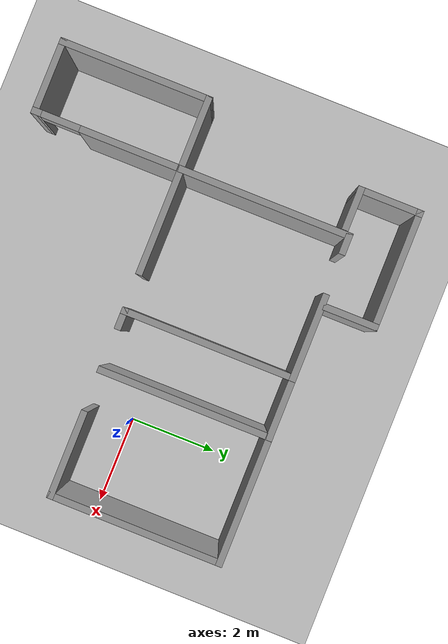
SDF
<sdf version="1.9">
 <world name="default">
  <model name="ground_plane">
   <static>true</static>
   <link name="link">
    <collision name="collision">
     <geometry><plane><normal>0 0 1</normal><size>100 100</size></plane></geometry>
     <surface><friction><ode><mu>100</mu><mu2>50</mu2></ode></friction></surface>
    </collision>
    <visual name="visual">
     <cast_shadows>false</cast_shadows>
     <geometry><plane><normal>0 0 1</normal><size>100 100</size></plane></geometry>
     <material>
      <script><uri>file://media/materials/scripts/gazebo.material</uri><name>Gazebo/Grey</name></script>
     </material>
    </visual>
   </link>
  </model>
  <model name="cma_escritorio">
   <pose>-1.7968200000000001 1.02121 0 0 0 0</pose>
   <link name="Wall_11">
    <collision name="Wall_11_Collision">
     <geometry><box><size>2 0.14999999999999999 2.5</size></box></geometry>
     <pose>0 0 1.25 0 0 0</pose>
    </collision>
    <visual name="Wall_11_Visual">
     <pose>0 0 1.25 0 0 0</pose>
     <geometry><box><size>2 0.14999999999999999 2.5</size></box></geometry>
     <material>
      <script><uri>file://media/materials/scripts/gazebo.material</uri><name>Gazebo/Grey</name></script>
      <ambient>1 1 1 1</ambient>
     </material>
    </visual>
    <pose>-1.3999999999999999 1.9299999999999999 0 0 0 3.1415899999999999</pose>
   </link>
   <link name="Wall_2">
    <collision name="Wall_2_Collision">
     <geometry><box><size>4 0.14999999999999999 2.5</size></box></geometry>
     <pose>0 0 1.25 0 0 0</pose>
    </collision>
    <visual name="Wall_2_Visual">
     <pose>0 0 1.25 0 0 0</pose>
     <geometry><box><size>4 0.14999999999999999 2.5</size></box></geometry>
     <material>
      <script><uri>file://media/materials/scripts/gazebo.material</uri><name>Gazebo/Grey</name></script>
      <ambient>1 1 1 1</ambient>
     </material>
    </visual>
    <pose>0.875 0.0050000000000000001 0 0 0 1.5708</pose>
   </link>
   <link name="Wall_25">
    <collision name="Wall_25_Collision">
     <geometry><box><size>2.5 0.14999999999999999 2.5</size></box></geometry>
     <pose>0 0 1.25 0 0 0</pose>
    </collision>
    <visual name="Wall_25_Visual">
     <pose>0 0 1.25 0 0 0</pose>
     <geometry><box><size>2.5 0.14999999999999999 2.5</size></box></geometry>
     <material>
      <script><uri>file://media/materials/scripts/gazebo.material</uri><name>Gazebo/Grey</name></script>
      <ambient>1 1 1 1</ambient>
     </material>
    </visual>
    <pose>-2.5499999999999998 -1.9299999999999999 0 0 0 3.1415899999999999</pose>
   </link>
   <link name="Wall_26">
    <collision name="Wall_26_Collision">
     <geometry><box><size>4 0.14999999999999999 2.5</size></box></geometry>
     <pose>0 0 1.25 0 0 0</pose>
    </collision>
    <visual name="Wall_26_Visual">
     <pose>0 0 1.25 0 0 0</pose>
     <geometry><box><size>4 0.14999999999999999 2.5</size></box></geometry>
     <material>
      <script><uri>file://media/materials/scripts/gazebo.material</uri><name>Gazebo/Grey</name></script>
      <ambient>1 1 1 1</ambient>
     </material>
    </visual>
    <pose>-3.7250000000000001 -0.0050000000000000001 0 0 0 1.5708</pose>
   </link>
   <link name="Wall_27">
    <collision name="Wall_27_Collision">
     <geometry><box><size>0.5 0.14999999999999999 2.5</size></box></geometry>
     <pose>0 0 1.25 0 0 0</pose>
    </collision>
    <visual name="Wall_27_Visual">
     <pose>0 0 1.25 0 0 0</pose>
     <geometry><box><size>0.5 0.14999999999999999 2.5</size></box></geometry>
     <material>
      <script><uri>file://media/materials/scripts/gazebo.material</uri><name>Gazebo/Grey</name></script>
      <ambient>1 1 1 1</ambient>
     </material>
    </visual>
    <pose>-3.5499999999999998 1.9199999999999999 0 0 0 0</pose>
   </link>
   <link name="Wall_3">
    <collision name="Wall_3_Collision">
     <geometry><box><size>3 0.14999999999999999 2.5</size></box></geometry>
     <pose>0 0 1.25 0 0 0</pose>
    </collision>
    <visual name="Wall_3_Visual">
     <pose>0 0 1.25 0 0 0</pose>
     <geometry><box><size>3 0.14999999999999999 2.5</size></box></geometry>
     <material>
      <script><uri>file://media/materials/scripts/gazebo.material</uri><name>Gazebo/Grey</name></script>
      <ambient>1 1 1 1</ambient>
     </material>
    </visual>
    <pose>2.2999999999999998 1.9299999999999999 0 0 0 0</pose>
   </link>
   <link name="Wall_4">
    <collision name="Wall_4_Collision">
     <geometry><box><size>4 0.14999999999999999 2.5</size></box></geometry>
     <pose>0 0 1.25 0 0 0</pose>
    </collision>
    <visual name="Wall_4_Visual">
     <pose>0 0 1.25 0 0 0</pose>
     <geometry><box><size>4 0.14999999999999999 2.5</size></box></geometry>
     <material>
      <script><uri>file://media/materials/scripts/gazebo.material</uri><name>Gazebo/Grey</name></script>
      <ambient>1 1 1 1</ambient>
     </material>
    </visual>
    <pose>3.7250000000000001 0.0050000000000000001 0 0 0 -1.5708</pose>
   </link>
   <link name="Wall_5">
    <collision name="Wall_5_Collision">
     <geometry><box><size>2 0.14999999999999999 2.5</size></box></geometry>
     <pose>0 0 1.25 0 0 0</pose>
    </collision>
    <visual name="Wall_5_Visual">
     <pose>0 0 1.25 0 0 0</pose>
     <geometry><box><size>2 0.14999999999999999 2.5</size></box></geometry>
     <material>
      <script><uri>file://media/materials/scripts/gazebo.material</uri><name>Gazebo/Grey</name></script>
      <ambient>1 1 1 1</ambient>
     </material>
    </visual>
    <pose>2.7999999999999998 -1.9199999999999999 0 0 0 3.1415899999999999</pose>
   </link>
   <link name="Wall_7">
    <collision name="Wall_7_Collision">
     <geometry><box><size>1.5 0.14999999999999999 2.5</size></box></geometry>
     <pose>0 0 1.25 0 0 0</pose>
    </collision>
    <visual name="Wall_7_Visual">
     <pose>0 0 1.25 0 0 0</pose>
     <geometry><box><size>1.5 0.14999999999999999 2.5</size></box></geometry>
     <material>
      <script><uri>file://media/materials/scripts/gazebo.material</uri><name>Gazebo/Grey</name></script>
      <ambient>1 1 1 1</ambient>
     </material>
    </visual>
    <pose>0.20000000000000001 1.9299999999999999 0 0 0 3.1415899999999999</pose>
   </link>
   <link name="Wall_8">
    <collision name="Wall_8_Collision">
     <geometry><box><size>4 0.14999999999999999 2.5</size></box></geometry>
     <pose>0 0 1.25 0 0 0</pose>
    </collision>
    <visual name="Wall_8_Visual">
     <pose>0 0 1.25 0 0 0</pose>
     <geometry><box><size>4 0.14999999999999999 2.5</size></box></geometry>
     <material>
      <script><uri>file://media/materials/scripts/gazebo.material</uri><name>Gazebo/Grey</name></script>
      <ambient>1 1 1 1</ambient>
     </material>
    </visual>
    <pose>-0.47499999999999998 0.0050000000000000001 0 0 0 -1.5708</pose>
   </link>
   <link name="Wall_9">
    <collision name="Wall_9_Collision">
     <geometry><box><size>0.5 0.14999999999999999 2.5</size></box></geometry>
     <pose>0 0 1.25 0 0 0</pose>
    </collision>
    <visual name="Wall_9_Visual">
     <pose>0 0 1.25 0 0 0</pose>
     <geometry><box><size>0.5 0.14999999999999999 2.5</size></box></geometry>
     <material>
      <script><uri>file://media/materials/scripts/gazebo.material</uri><name>Gazebo/Grey</name></script>
      <ambient>1 1 1 1</ambient>
     </material>
    </visual>
    <pose>-0.29999999999999999 -1.9199999999999999 0 0 0 0</pose>
   </link>
   <static>true</static>
  </model>
  <model name="cma_banheiro">
   <pose>-5.2292800000000002 3.4870999999999999 0 0 0 0</pose>
   <link name="Wall_0">
    <collision name="Wall_0_Collision">
     <geometry><box><size>1 0.14999999999999999 2.5</size></box></geometry>
     <pose>0 0 1.25 0 0 0</pose>
    </collision>
    <visual name="Wall_0_Visual">
     <pose>0 0 1.25 0 0 0</pose>
     <geometry><box><size>1 0.14999999999999999 2.5</size></box></geometry>
     <material>
      <script><uri>file://media/materials/scripts/gazebo.material</uri><name>Gazebo/Grey</name></script>
      <ambient>1 1 1 1</ambient>
     </material>
    </visual>
    <pose>-0.875 -0.67500000000000004 0 0 0 3.1415899999999999</pose>
   </link>
   <link name="Wall_1">
    <collision name="Wall_1_Collision">
     <geometry><box><size>1.5 0.14999999999999999 2.5</size></box></geometry>
     <pose>0 0 1.25 0 0 0</pose>
    </collision>
    <visual name="Wall_1_Visual">
     <pose>0 0 1.25 0 0 0</pose>
     <geometry><box><size>1.5 0.14999999999999999 2.5</size></box></geometry>
     <material>
      <script><uri>file://media/materials/scripts/gazebo.material</uri><name>Gazebo/Grey</name></script>
      <ambient>1 1 1 1</ambient>
     </material>
    </visual>
    <pose>-1.3 0 0 0 0 1.5708</pose>
   </link>
   <link name="Wall_2">
    <collision name="Wall_2_Collision">
     <geometry><box><size>2.75 0.14999999999999999 2.5</size></box></geometry>
     <pose>0 0 1.25 0 0 0</pose>
    </collision>
    <visual name="Wall_2_Visual">
     <pose>0 0 1.25 0 0 0</pose>
     <geometry><box><size>2.75 0.14999999999999999 2.5</size></box></geometry>
     <material>
      <script><uri>file://media/materials/scripts/gazebo.material</uri><name>Gazebo/Grey</name></script>
      <ambient>1 1 1 1</ambient>
     </material>
    </visual>
    <pose>0 0.67500000000000004 0 0 0 0</pose>
   </link>
   <link name="Wall_4">
    <collision name="Wall_4_Collision">
     <geometry><box><size>1.25 0.14999999999999999 2.5</size></box></geometry>
     <pose>0 0 1.25 0 0 0</pose>
    </collision>
    <visual name="Wall_4_Visual">
     <pose>0 0 1.25 0 0 0</pose>
     <geometry><box><size>1.25 0.14999999999999999 2.5</size></box></geometry>
     <material>
      <script><uri>file://media/materials/scripts/gazebo.material</uri><name>Gazebo/Grey</name></script>
      <ambient>1 1 1 1</ambient>
     </material>
    </visual>
    <pose>1.3 0.125 0 0 0 -1.5708</pose>
   </link>
   <static>true</static>
  </model>
  <model name="cma_varanda1">
   <pose>-6.3251799999999996 -2.5931299999999999 0 0 0 0</pose>
   <link name="Wall_0">
    <pose>0.80000000000000004 0 0 0 0 -1.5708</pose>
    <visual name="Wall_0_Visual_0">
     <pose>-0.55249999999999999 0 1.25 0 0 0</pose>
     <geometry><box><size>2.395 0.14999999999999999 2.5</size></box></geometry>
     <material>
      <script><uri>file://media/materials/scripts/gazebo.material</uri><name>Gazebo/Grey</name></script>
      <ambient>1 1 1 1</ambient>
     </material>
    </visual>
    <collision name="Wall_0_Collision_0">
     <geometry><box><size>2.395 0.14999999999999999 2.5</size></box></geometry>
     <pose>-0.55249999999999999 0 1.25 0 0 0</pose>
    </collision>
    <visual name="Wall_0_Visual_1">
     <pose>1.6375 0 1.25 0 0 0</pose>
     <geometry><box><size>0.22500000000000001 0.14999999999999999 2.5</size></box></geometry>
     <material>
      <script><uri>file://media/materials/scripts/gazebo.material</uri><name>Gazebo/Grey</name></script>
      <ambient>1 1 1 1</ambient>
     </material>
    </visual>
    <collision name="Wall_0_Collision_1">
     <geometry><box><size>0.22500000000000001 0.14999999999999999 2.5</size></box></geometry>
     <pose>1.6375 0 1.25 0 0 0</pose>
    </collision>
    <visual name="Wall_0_Visual_2">
     <pose>1.085 0 2.25 0 0 0</pose>
     <geometry><box><size>0.88 0.14999999999999999 0.5</size></box></geometry>
     <material>
      <script><uri>file://media/materials/scripts/gazebo.material</uri><name>Gazebo/Grey</name></script>
      <ambient>1 1 1 1</ambient>
     </material>
    </visual>
    <collision name="Wall_0_Collision_2">
     <geometry><box><size>0.88 0.14999999999999999 0.5</size></box></geometry>
     <pose>1.085 0 2.25 0 0 0</pose>
    </collision>
   </link>
   <link name="Wall_1">
    <collision name="Wall_1_Collision">
     <geometry><box><size>1.75 0.14999999999999999 2.5</size></box></geometry>
     <pose>0 0 1.25 0 0 0</pose>
    </collision>
    <visual name="Wall_1_Visual">
     <pose>0 0 1.25 0 0 0</pose>
     <geometry><box><size>1.75 0.14999999999999999 2.5</size></box></geometry>
     <material>
      <script><uri>file://media/materials/scripts/gazebo.material</uri><name>Gazebo/Grey</name></script>
      <ambient>1 1 1 1</ambient>
     </material>
    </visual>
    <pose>0 -1.675 0 0 0 3.1415899999999999</pose>
   </link>
   <link name="Wall_2">
    <collision name="Wall_2_Collision">
     <geometry><box><size>3.5 0.14999999999999999 2.5</size></box></geometry>
     <pose>0 0 1.25 0 0 0</pose>
    </collision>
    <visual name="Wall_2_Visual">
     <pose>0 0 1.25 0 0 0</pose>
     <geometry><box><size>3.5 0.14999999999999999 2.5</size></box></geometry>
     <material>
      <script><uri>file://media/materials/scripts/gazebo.material</uri><name>Gazebo/Grey</name></script>
      <ambient>1 1 1 1</ambient>
     </material>
    </visual>
    <pose>-0.80000000000000004 0 0 0 0 1.5708</pose>
   </link>
   <link name="Wall_3">
    <collision name="Wall_3_Collision">
     <geometry><box><size>1.75 0.14999999999999999 2.5</size></box></geometry>
     <pose>0 0 1.25 0 0 0</pose>
    </collision>
    <visual name="Wall_3_Visual">
     <pose>0 0 1.25 0 0 0</pose>
     <geometry><box><size>1.75 0.14999999999999999 2.5</size></box></geometry>
     <material>
      <script><uri>file://media/materials/scripts/gazebo.material</uri><name>Gazebo/Grey</name></script>
      <ambient>1 1 1 1</ambient>
     </material>
    </visual>
    <pose>0 1.675 0 0 0 0</pose>
   </link>
   <static>true</static>
  </model>
 </world>
</sdf>
